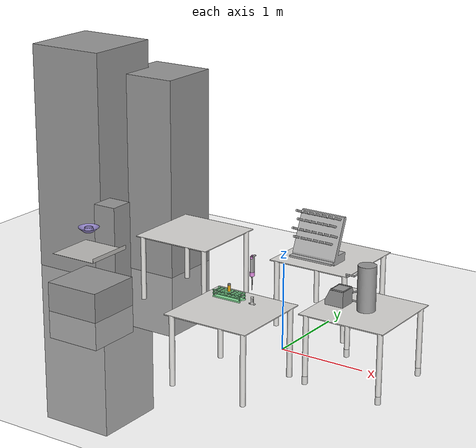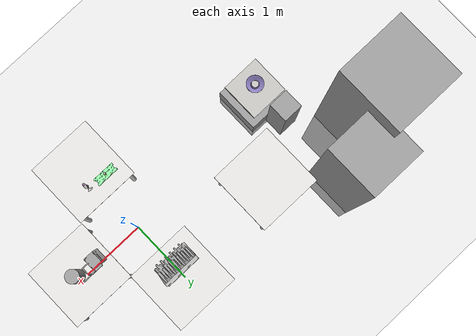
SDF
<sdf version="1.7">
 <world name="iiwa_hande">
  <plugin name="gz::sim::systems::Physics" filename="gz-sim-physics-system"/>
  <plugin name="gz::sim::systems::UserCommands" filename="gz-sim-user-commands-system"/>
  <plugin name="gz::sim::systems::SceneBroadcaster" filename="gz-sim-scene-broadcaster-system"/>
  <plugin name="gazebo_link_attacher" filename="libgazebo_link_attacher.so"/>
  <include><uri>model://sun</uri></include>
  <include><uri>model://ground_plane</uri></include>
  <include><uri>model://table_chem</uri><name>table_left</name><pose>0 1 0.8 0 0 1.57</pose></include>
  <include><uri>model://table_chem</uri><name>table_right</name><pose>0 -1 0.8 0 0 1.57</pose></include>
  <include><uri>model://table_chem</uri><name>table_middle</name><pose>1 0 0.7 0 0 0</pose></include>
  <include><uri>model://table_chem</uri><name>table_back</name><pose>-1.75 0.8 0.8 0 0 0</pose></include>
  <include><uri>model://dryer</uri><name>dryer</name><pose>-0.068 0.8 0.8 0 0 3.141589</pose></include>
  <include><uri>model://funnel</uri><name>funnel</name><pose>-2.52816 -0.228273 0.7 0 0 0</pose></include>
  <include><uri>model://sheet</uri><name>sheet</name><pose>-2.52946 -0.22767 0.7 0 0 0</pose></include>
  <include><uri>model://tip_holder</uri><name>tip_holder</name><pose>0.09 -0.75 0.8 0 0 0</pose></include>
  <include>
   <uri>model://tip_dispenser</uri>
   <name>tip_dispenser</name>
   <pose>0.090 -0.75 1.2 0 0 0</pose>
  </include>
  <include><uri>model://tube_tripod</uri><name>tube_tripod</name><pose>-0.2 -0.75 0.8 0 -0 0</pose></include>
  <include><uri>model://tube_main</uri><name>tube_main</name><pose>-0.2 -0.75 0.85 0 0 0</pose></include>
  <include><uri>model://tube_cover</uri><name>tube_cover</name><pose>-0.2 -0.75 0.95 0 0 0</pose></include>
  <include>
   <uri>model://table_vibro</uri>
   <name>table_vibro</name>
   <pose>-2.53046 -0.225356 0 0 -0 0</pose>
  </include>
  <include>
   <uri>model://water_dispenser</uri>
   <name>water_dispenser</name>
   <pose>0.72 0 0.7 0 0 3.14159</pose>
  </include>
  <include>
   <uri>model://podstavka_dlya_dozatorov</uri>
   <name>podstavka_dlya_dozatorov</name>
   <pose>-2.993546 0.956633 0.472458 0 0 0</pose>
  </include>
  <gravity>0 0 -9.8</gravity>
  <magnetic_field>6e-06 2.3e-05 -4.2e-05</magnetic_field>
  <atmosphere type="adiabatic"/>
  <physics type="ode">
   <max_step_size>0.001</max_step_size>
   <real_time_factor>1</real_time_factor>
   <real_time_update_rate>1000</real_time_update_rate>
  </physics>
  <scene><ambient>0.4 0.4 0.4 1</ambient><background>0.7 0.7 0.7 1</background><shadows>1</shadows></scene>
  <audio><device>default</device></audio>
  <spherical_coordinates>
   <surface_model>EARTH_WGS84</surface_model>
   <latitude_deg>0</latitude_deg>
   <longitude_deg>0</longitude_deg>
   <elevation>0</elevation>
   <heading_deg>0</heading_deg>
  </spherical_coordinates>
 </world>
</sdf>

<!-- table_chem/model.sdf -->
<sdf version='1.7'>
  <model name='table_chem'>
    <link name='body'>
      <self_collide>0</self_collide>
      <enable_wind>0</enable_wind>
      <kinematic>1</kinematic>
      <pose>0 0 0 0 -0 0</pose>
      <gravity>1</gravity>
      <inertial>
        <mass>3</mass>
        <pose>0 0 0 0 -0 0</pose>
        <inertia>
          <ixx>1</ixx>
          <ixy>0</ixy>
          <ixz>0</ixz>
          <iyy>1</iyy>
          <iyz>0</iyz>
          <izz>1</izz>
        </inertia>
      </inertial>
      <visual name='visual'>
        <geometry>
          <mesh>
            <uri>model://table_chem/meshes/table.stl</uri>
            <scale>1 1 1</scale>
          </mesh>
        </geometry>
        <material>
          <shader type='pixel'>
            <normal_map>__default__</normal_map>
          </shader>
          <script>
            <name>ModelPreview_92::link::visual_MATERIAL_</name>
            <uri>__default__</uri>
          </script>
          <ambient>0.871 0.867 0.855 1</ambient>
          <diffuse>0.871 0.867 0.855 1</diffuse>
          <specular>0 0 0 1</specular>
          <emissive>0 0 0 1</emissive>
        </material>
        <pose>0 0 0 0 -0 0</pose>
        <transparency>0</transparency>
        <cast_shadows>1</cast_shadows>
      </visual>
      <collision name='collision'>
        <laser_retro>0</laser_retro>
        <max_contacts>10</max_contacts>
        <pose>0 0 0 0 -0 0</pose>
        <geometry>
          <mesh>
            <uri>model://table_chem/meshes/table.stl</uri>
            <scale>1 1 1</scale>
          </mesh>
        </geometry>
        <surface>
          <friction>
            <ode>
              <mu>1</mu>
              <mu2>1</mu2>
              <fdir1>0 0 0</fdir1>
              <slip1>0</slip1>
              <slip2>0</slip2>
            </ode>
            <torsional>
              <coefficient>1</coefficient>
              <patch_radius>0</patch_radius>
              <surface_radius>0</surface_radius>
              <use_patch_radius>1</use_patch_radius>
              <ode>
                <slip>0</slip>
              </ode>
            </torsional>
          </friction>
          <bounce>
            <restitution_coefficient>0</restitution_coefficient>
            <threshold>1e+06</threshold>
          </bounce>
          <contact>
            <collide_without_contact>0</collide_without_contact>
            <collide_without_contact_bitmask>1</collide_without_contact_bitmask>
            <collide_bitmask>1</collide_bitmask>
            <ode>
              <soft_cfm>0</soft_cfm>
              <soft_erp>0.2</soft_erp>
              <kp>1e+13</kp>
              <kd>1</kd>
              <max_vel>0.01</max_vel>
              <min_depth>0</min_depth>
            </ode>
            <bullet>
              <split_impulse>1</split_impulse>
              <split_impulse_penetration_threshold>-0.01</split_impulse_penetration_threshold>
              <soft_cfm>0</soft_cfm>
              <soft_erp>0.2</soft_erp>
              <kp>1e+13</kp>
              <kd>1</kd>
            </bullet>
          </contact>
        </surface>
      </collision>
    </link>
    <static>0</static>
    <allow_auto_disable>1</allow_auto_disable>
  </model>
</sdf>

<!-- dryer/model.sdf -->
<sdf version='1.7'>
  <model name='dryer'>
    <link name='link'>
      <self_collide>0</self_collide>
      <enable_wind>0</enable_wind>
      <kinematic>1</kinematic>
      <pose>0 0 0 0 -0 0</pose>
      <gravity>1</gravity>
      <inertial>
        <mass>3</mass>
        <pose>0 0 0 0 -0 0</pose>
        <inertia>
          <ixx>1</ixx>
          <ixy>0</ixy>
          <ixz>0</ixz>
          <iyy>1</iyy>
          <iyz>0</iyz>
          <izz>1</izz>
        </inertia>
      </inertial>
      <visual name='visual'>
        <geometry>
          <mesh>
            <uri>model://dryer/meshes/dryer.stl</uri>
            <scale>1 1 1</scale>
          </mesh>
        </geometry>
        <material>
          <shader type='pixel'>
            <normal_map>__default__</normal_map>
          </shader>
          <script>
            <name>ModelPreview_92::link::visual_MATERIAL_</name>
            <uri>__default__</uri>
          </script>
            <ambient>0.965 0.961 0.957 1</ambient>
            <diffuse>0.7 0.7 0.7 1</diffuse>
          <specular>0 0 0 1</specular>
          <emissive>0 0 0 1</emissive>
        </material>
        <pose>0 0 0 0 -0 0</pose>
        <transparency>0</transparency>
        <cast_shadows>1</cast_shadows>
      </visual>
      <collision name='collision'>
        <laser_retro>0</laser_retro>
        <max_contacts>10</max_contacts>
        <pose>0 0 0 0 -0 0</pose>
        <geometry>
          <mesh>
            <uri>/home/stepan/Документы/GitHub/ros2_chemical_competition/worlds/models/dryer/meshes/dryer.stl</uri>
            <scale>1 1 1</scale>
          </mesh>
        </geometry>
        <surface>
          <friction>
            <ode>
              <mu>1</mu>
              <mu2>1</mu2>
              <fdir1>0 0 0</fdir1>
              <slip1>0</slip1>
              <slip2>0</slip2>
            </ode>
            <torsional>
              <coefficient>1</coefficient>
              <patch_radius>0</patch_radius>
              <surface_radius>0</surface_radius>
              <use_patch_radius>1</use_patch_radius>
              <ode>
                <slip>0</slip>
              </ode>
            </torsional>
          </friction>
          <bounce>
            <restitution_coefficient>0</restitution_coefficient>
            <threshold>1e+06</threshold>
          </bounce>
          <contact>
            <collide_without_contact>0</collide_without_contact>
            <collide_without_contact_bitmask>1</collide_without_contact_bitmask>
            <collide_bitmask>1</collide_bitmask>
            <ode>
              <soft_cfm>0</soft_cfm>
              <soft_erp>0.2</soft_erp>
              <kp>1e+13</kp>
              <kd>1</kd>
              <max_vel>0.01</max_vel>
              <min_depth>0</min_depth>
            </ode>
            <bullet>
              <split_impulse>1</split_impulse>
              <split_impulse_penetration_threshold>-0.01</split_impulse_penetration_threshold>
              <soft_cfm>0</soft_cfm>
              <soft_erp>0.2</soft_erp>
              <kp>1e+13</kp>
              <kd>1</kd>
            </bullet>
          </contact>
        </surface>
      </collision>
    </link>
    <static>0</static>
    <allow_auto_disable>1</allow_auto_disable>
  </model>
</sdf>

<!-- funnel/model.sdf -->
<sdf version='1.7'>
  <model name='funnel'>
    <link name='link'>
      <self_collide>0</self_collide>
      <enable_wind>0</enable_wind>
      <kinematic>0</kinematic>
      <pose>0 0 0 0 -0 0</pose>
      <gravity>1</gravity>
      <inertial>
        <mass>1</mass>
        <pose>0 0 0 0 -0 0</pose>
        <inertia>
          <ixx>1</ixx>
          <ixy>0</ixy>
          <ixz>0</ixz>
          <iyy>1</iyy>
          <iyz>0</iyz>
          <izz>1</izz>
        </inertia>
      </inertial>
      <visual name='visual'>
        <geometry>
          <mesh>
            <uri>model://funnel/meshes/funnel.stl</uri>
            <scale>1 1 1</scale>
          </mesh>
        </geometry>
        <material>
          <shader type='pixel'>
            <normal_map>__default__</normal_map>
          </shader>
          <script>
            <name>ModelPreview_83::link::visual_MATERIAL_</name>
            <uri>__default__</uri>
          </script>
          <ambient>0.8 0.8 0.9 1</ambient>
          <diffuse>0.55 0.5 0.75 1</diffuse>
          <specular>0 0 0 1</specular>
          <emissive>0 0 0 1</emissive>
        </material>
        <pose>0 0 0 0 -0 0</pose>
        <transparency>0</transparency>
        <cast_shadows>1</cast_shadows>
      </visual>
      <collision name='collision'>
        <laser_retro>0</laser_retro>
        <max_contacts>10</max_contacts>
        <pose>0 0 0 0 -0 0</pose>
        <geometry>
          <mesh>
            <uri>model://funnel/meshes/funnel.stl</uri>
            <scale>1 1 1</scale>
          </mesh>
        </geometry>
        <surface>
          <friction>
            <ode>
              <mu>1</mu>
              <mu2>1</mu2>
              <fdir1>0 0 0</fdir1>
              <slip1>0</slip1>
              <slip2>0</slip2>
            </ode>
            <torsional>
              <coefficient>1</coefficient>
              <patch_radius>0</patch_radius>
              <surface_radius>0</surface_radius>
              <use_patch_radius>1</use_patch_radius>
              <ode>
                <slip>0</slip>
              </ode>
            </torsional>
          </friction>
          <bounce>
            <restitution_coefficient>0</restitution_coefficient>
            <threshold>1e+06</threshold>
          </bounce>
          <contact>
            <collide_without_contact>0</collide_without_contact>
            <collide_without_contact_bitmask>1</collide_without_contact_bitmask>
            <collide_bitmask>1</collide_bitmask>
            <ode>
              <soft_cfm>0</soft_cfm>
              <soft_erp>0.2</soft_erp>
              <kp>1e+13</kp>
              <kd>1</kd>
              <max_vel>0.01</max_vel>
              <min_depth>0</min_depth>
            </ode>
            <bullet>
              <split_impulse>1</split_impulse>
              <split_impulse_penetration_threshold>-0.01</split_impulse_penetration_threshold>
              <soft_cfm>0</soft_cfm>
              <soft_erp>0.2</soft_erp>
              <kp>1e+13</kp>
              <kd>1</kd>
            </bullet>
          </contact>
        </surface>
      </collision>
    </link>
    <static>0</static>
    <allow_auto_disable>1</allow_auto_disable>
  </model>
</sdf>

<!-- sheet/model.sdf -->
<sdf version='1.7'>
  <model name='sheet'>
    <link name='body'>
      <self_collide>0</self_collide>
      <enable_wind>0</enable_wind>
      <kinematic>0</kinematic>
      <pose>0 0 0 0 -0 0</pose>
      <gravity>1</gravity>
      <inertial>
        <mass>3</mass>
        <pose>0 0 0 0 -0 0</pose>
        <inertia>
          <ixx>1</ixx>
          <ixy>0</ixy>
          <ixz>0</ixz>
          <iyy>1</iyy>
          <iyz>0</iyz>
          <izz>1</izz>
        </inertia>
      </inertial>
      <visual name='visual'>
        <geometry>
          <mesh>
            <uri>model://sheet/meshes/sheet.stl</uri>
            <scale>1 1 1</scale>
          </mesh>
        </geometry>
        <material>
          <shader type='pixel'>
            <normal_map>__default__</normal_map>
          </shader>
          <script>
            <name>ModelPreview_92::link::visual_MATERIAL_</name>
            <uri>__default__</uri>
          </script>
          <ambient>0.753 0.749 0.737 1</ambient>
          <diffuse>0.753 0.749 0.737 1</diffuse>
          <specular>0 0 0 1</specular>
          <emissive>0 0 0 1</emissive>
        </material>
        <pose>0 0 0 0 -0 0</pose>
        <transparency>0</transparency>
        <cast_shadows>1</cast_shadows>
      </visual>
      <collision name='collision'>
        <laser_retro>0</laser_retro>
        <max_contacts>10</max_contacts>
        <pose>0 0 0 0 -0 0</pose>
        <geometry>
          <mesh>
            <uri>model://sheet/meshes/sheet.stl</uri>
            <scale>1 1 1</scale>
          </mesh>
        </geometry>
        <surface>
          <friction>
            <ode>
              <mu>1</mu>
              <mu2>1</mu2>
              <fdir1>0 0 0</fdir1>
              <slip1>0</slip1>
              <slip2>0</slip2>
            </ode>
            <torsional>
              <coefficient>1</coefficient>
              <patch_radius>0</patch_radius>
              <surface_radius>0</surface_radius>
              <use_patch_radius>1</use_patch_radius>
              <ode>
                <slip>0</slip>
              </ode>
            </torsional>
          </friction>
          <bounce>
            <restitution_coefficient>0</restitution_coefficient>
            <threshold>1e+06</threshold>
          </bounce>
          <contact>
            <collide_without_contact>0</collide_without_contact>
            <collide_without_contact_bitmask>1</collide_without_contact_bitmask>
            <collide_bitmask>1</collide_bitmask>
            <ode>
              <soft_cfm>0</soft_cfm>
              <soft_erp>0.2</soft_erp>
              <kp>1e+13</kp>
              <kd>1</kd>
              <max_vel>0.01</max_vel>
              <min_depth>0</min_depth>
            </ode>
            <bullet>
              <split_impulse>1</split_impulse>
              <split_impulse_penetration_threshold>-0.01</split_impulse_penetration_threshold>
              <soft_cfm>0</soft_cfm>
              <soft_erp>0.2</soft_erp>
              <kp>1e+13</kp>
              <kd>1</kd>
            </bullet>
          </contact>
        </surface>
      </collision>
    </link>
    <static>0</static>
    <allow_auto_disable>1</allow_auto_disable>
  </model>
</sdf>

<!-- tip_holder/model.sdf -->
<sdf version='1.7'>
  <model name='tip_holder'>
    <link name='body'>
      <self_collide>0</self_collide>
      <enable_wind>0</enable_wind>
      <kinematic>1</kinematic>
      <pose>0 0 0 0 -0 0</pose>
      <gravity>1</gravity>
      <inertial>
        <mass>3</mass>
        <pose>0 0 0 0 -0 0</pose>
        <inertia>
          <ixx>1</ixx>
          <ixy>0</ixy>
          <ixz>0</ixz>
          <iyy>1</iyy>
          <iyz>0</iyz>
          <izz>1</izz>
        </inertia>
      </inertial>
      <visual name='visual'>
        <geometry>
          <mesh>
            <uri>model://tip_holder/meshes/tip_holder.stl</uri>
            <scale>1 1 1</scale>
          </mesh>
        </geometry>
        <material>
          <shader type='pixel'>
            <normal_map>__default__</normal_map>
          </shader>
          <script>
            <name>ModelPreview_92::link::visual_MATERIAL_</name>
            <uri>__default__</uri>
          </script>
          <ambient>0.871 0.867 0.855 1</ambient>
          <diffuse>0.871 0.867 0.855 1</diffuse>
          <specular>0 0 0 1</specular>
          <emissive>0 0 0 1</emissive>
        </material>
        <pose>0 0 0 0 -0 0</pose>
        <transparency>0</transparency>
        <cast_shadows>1</cast_shadows>
      </visual>
      <collision name='collision'>
        <laser_retro>0</laser_retro>
        <max_contacts>10</max_contacts>
        <pose>0 0 0 0 -0 0</pose>
        <geometry>
          <mesh>
            <uri>model://tip_holder/meshes/tip_holder.stl</uri>
            <scale>1 1 1</scale>
          </mesh>
        </geometry>
        <surface>
          <friction>
            <ode>
              <mu>1</mu>
              <mu2>1</mu2>
              <fdir1>0 0 0</fdir1>
              <slip1>0</slip1>
              <slip2>0</slip2>
            </ode>
            <torsional>
              <coefficient>1</coefficient>
              <patch_radius>0</patch_radius>
              <surface_radius>0</surface_radius>
              <use_patch_radius>1</use_patch_radius>
              <ode>
                <slip>0</slip>
              </ode>
            </torsional>
          </friction>
          <bounce>
            <restitution_coefficient>0</restitution_coefficient>
            <threshold>1e+06</threshold>
          </bounce>
          <contact>
            <collide_without_contact>0</collide_without_contact>
            <collide_without_contact_bitmask>1</collide_without_contact_bitmask>
            <collide_bitmask>1</collide_bitmask>
            <ode>
              <soft_cfm>0</soft_cfm>
              <soft_erp>0.2</soft_erp>
              <kp>1e+13</kp>
              <kd>1</kd>
              <max_vel>0.01</max_vel>
              <min_depth>0</min_depth>
            </ode>
            <bullet>
              <split_impulse>1</split_impulse>
              <split_impulse_penetration_threshold>-0.01</split_impulse_penetration_threshold>
              <soft_cfm>0</soft_cfm>
              <soft_erp>0.2</soft_erp>
              <kp>1e+13</kp>
              <kd>1</kd>
            </bullet>
          </contact>
        </surface>
      </collision>
    </link>
    <static>0</static>
    <allow_auto_disable>1</allow_auto_disable>
  </model>
</sdf>

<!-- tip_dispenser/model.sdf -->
<sdf version='1.7'>
    <model name='tip_dispenser'>
      <link name='pusher'>
        <inertial>
          <mass>0.05</mass>
          <inertia>
            <ixx>0.166667</ixx>
            <ixy>0</ixy>
            <ixz>0</ixz>
            <iyy>0.166667</iyy>
            <iyz>0</iyz>
            <izz>0.166667</izz>
          </inertia>
          <pose>0 0 0 0 -0 0</pose>
        </inertial>
        <pose>0.00347 0.001633 0.023543 0 -0 0</pose>
        <self_collide>0</self_collide>
        <enable_wind>0</enable_wind>
        <kinematic>0</kinematic>
        <visual name='visual'>
          <pose>0 0 0 0 -0 0</pose>
          <geometry>
            <mesh>
              <uri>model://tip_dispenser/meshes/tip_remover.stl</uri>
              <scale>1 1 1</scale>
            </mesh>
          </geometry>
          <material>
            <lighting>1</lighting>
            <script>
              <uri>file://media/materials/scripts/gazebo.material</uri>
              <name>Gazebo/Grey</name>
            </script>
            <ambient>0.863 0.541 0.867 1</ambient>
            <diffuse>0.863 0.541 0.867 1</diffuse>
            <specular>0 0 0 1</specular>
            <emissive>0 0 0 1</emissive>
          </material>
          <pose>0 0 0 0 -0 0</pose>
          <transparency>0</transparency>
          <cast_shadows>1</cast_shadows>
        </visual>
        <collision name='collision'>
          <laser_retro>0</laser_retro>
          <max_contacts>0</max_contacts>
          <pose>0 0 0 0 -0 0</pose>
          <geometry>
            <mesh>
              <uri>model://tip_dispenser/meshes/tip_remover.stl</uri>
              <scale>1 1 1</scale>
            </mesh>
          </geometry>
          <surface>
            <friction>
              <ode>
                <mu>1</mu>
                <mu2>1</mu2>
                <fdir1>0 0 0</fdir1>
                <slip1>0</slip1>
                <slip2>0</slip2>
              </ode>
              <torsional>
                <coefficient>1</coefficient>
                <patch_radius>0</patch_radius>
                <surface_radius>0</surface_radius>
                <use_patch_radius>1</use_patch_radius>
                <ode>
                  <slip>0</slip>
                </ode>
              </torsional>
            </friction>
            <bounce>
              <restitution_coefficient>0</restitution_coefficient>
              <threshold>1e+06</threshold>
            </bounce>
            <contact>
              <collide_without_contact>0</collide_without_contact>
              <collide_without_contact_bitmask>1</collide_without_contact_bitmask>
              <collide_bitmask>1</collide_bitmask>
              <ode>
                <soft_cfm>0</soft_cfm>
                <soft_erp>0.2</soft_erp>
                <kp>1e+13</kp>
                <kd>1</kd>
                <max_vel>0.01</max_vel>
                <min_depth>0</min_depth>
              </ode>
              <bullet>
                <split_impulse>1</split_impulse>
                <split_impulse_penetration_threshold>-0.01</split_impulse_penetration_threshold>
                <soft_cfm>0</soft_cfm>
                <soft_erp>0.2</soft_erp>
                <kp>1e+13</kp>
                <kd>1</kd>
              </bullet>
            </contact>
          </surface>
        </collision>
      </link>
      <link name='body'>
        <inertial>
          <mass>0.1</mass>
          <inertia>
            <ixx>0.166667</ixx>
            <ixy>0</ixy>
            <ixz>0</ixz>
            <iyy>0.166667</iyy>
            <iyz>0</iyz>
            <izz>0.166667</izz>
          </inertia>
          <pose>0 0 0 0 -0 0</pose>
        </inertial>
        <pose>-0.000906 -0.000185 0.011704 0 -0 0</pose>
        <gravity>0</gravity>
        <self_collide>0</self_collide>
        <kinematic>0</kinematic>
        <enable_wind>0</enable_wind>
        <visual name='visual'>
          <pose>0 0 0 0 -0 0</pose>
          <geometry>
            <mesh>
              <uri>model://tip_dispenser/meshes/body.stl</uri>
              <scale>1 1 1</scale>
            </mesh>
          </geometry>
          <material>
            <lighting>1</lighting>
            <script>
              <uri>file://media/materials/scripts/gazebo.material</uri>
              <name>Gazebo/Grey</name>
            </script>
            <shader type='pixel'>
              <normal_map>__default__</normal_map>
            </shader>
            <ambient>0.965 0.961 0.957 1</ambient>
            <diffuse>0.7 0.7 0.7 1</diffuse>
            <specular>0.01 0.01 0.01 1</specular>
            <emissive>0 0 0 1</emissive>
          </material>
          <transparency>0</transparency>
          <cast_shadows>1</cast_shadows>
        </visual>
        <collision name='collision'>
          <laser_retro>0</laser_retro>
          <max_contacts>0</max_contacts>
          <pose>0 0 0 0 -0 0</pose>
          <geometry>
            <mesh>
              <uri>model://tip_dispenser/meshes/body.stl</uri>
              <scale>1 1 1</scale>
            </mesh>
          </geometry>
          <surface>
            <friction>
              <ode>
                <mu>1</mu>
                <mu2>1</mu2>
                <fdir1>0 0 0</fdir1>
                <slip1>0</slip1>
                <slip2>0</slip2>
              </ode>
              <torsional>
                <coefficient>1</coefficient>
                <patch_radius>0</patch_radius>
                <surface_radius>0</surface_radius>
                <use_patch_radius>1</use_patch_radius>
                <ode>
                  <slip>0</slip>
                </ode>
              </torsional>
            </friction>
            <bounce>
              <restitution_coefficient>0</restitution_coefficient>
              <threshold>1e+06</threshold>
            </bounce>
            <contact>
              <collide_without_contact>0</collide_without_contact>
              <collide_without_contact_bitmask>1</collide_without_contact_bitmask>
              <collide_bitmask>1</collide_bitmask>
              <ode>
                <soft_cfm>0</soft_cfm>
                <soft_erp>0.2</soft_erp>
                <kp>1e+13</kp>
                <kd>1</kd>
                <max_vel>0.01</max_vel>
                <min_depth>0</min_depth>
              </ode>
              <bullet>
                <split_impulse>1</split_impulse>
                <split_impulse_penetration_threshold>-0.01</split_impulse_penetration_threshold>
                <soft_cfm>0</soft_cfm>
                <soft_erp>0.2</soft_erp>
                <kp>1e+13</kp>
                <kd>1</kd>
              </bullet>
            </contact>
          </surface>
        </collision>
      </link>
      <link name='button'>
        <inertial>
          <mass>0.01</mass>
          <inertia>
            <ixx>0.166667</ixx>
            <ixy>0</ixy>
            <ixz>0</ixz>
            <iyy>0.166667</iyy>
            <iyz>0</iyz>
            <izz>0.166667</izz>
          </inertia>
          <pose>0 0 0 0 -0 0</pose>
        </inertial>
        <pose>-0.000892 -0.000516 0.108964 0 0 -2.90884</pose>
        <self_collide>0</self_collide>
        <enable_wind>0</enable_wind>
        <kinematic>0</kinematic>
        <visual name='visual'>
          <pose>0 0 0 0 -0 0</pose>
          <geometry>
            <mesh>
              <uri>model://tip_dispenser/meshes/button.stl</uri>
              <scale>1 1 1</scale>
            </mesh>
          </geometry>
          <material>
            <lighting>1</lighting>
            <script>
              <uri>file://media/materials/scripts/gazebo.material</uri>
              <name>Gazebo/Grey</name>
            </script>
            <ambient>0.863 0.541 0.867 1</ambient>
            <diffuse>0.863 0.541 0.867 1</diffuse>
            <specular>0 0 0 1</specular>
            <emissive>0 0 0 1</emissive>
          </material>
          <transparency>0</transparency>
          <cast_shadows>1</cast_shadows>
        </visual>
        <collision name='collision'>
          <laser_retro>0</laser_retro>
          <max_contacts>0</max_contacts>
          <pose>0 0 0 0 -0 0</pose>
          <geometry>
            <mesh>
              <uri>model://tip_dispenser/meshes/button.stl</uri>
              <scale>1 1 1</scale>
            </mesh>
          </geometry>
          <surface>
            <friction>
              <ode>
                <mu>1</mu>
                <mu2>1</mu2>
                <fdir1>0 0 0</fdir1>
                <slip1>0</slip1>
                <slip2>0</slip2>
              </ode>
              <torsional>
                <coefficient>1</coefficient>
                <patch_radius>0</patch_radius>
                <surface_radius>0</surface_radius>
                <use_patch_radius>1</use_patch_radius>
                <ode>
                  <slip>0</slip>
                </ode>
              </torsional>
            </friction>
            <bounce>
              <restitution_coefficient>0</restitution_coefficient>
              <threshold>1e+06</threshold>
            </bounce>
            <contact>
              <collide_without_contact>0</collide_without_contact>
              <collide_without_contact_bitmask>1</collide_without_contact_bitmask>
              <collide_bitmask>1</collide_bitmask>
              <ode>
                <soft_cfm>0</soft_cfm>
                <soft_erp>0.2</soft_erp>
                <kp>1e+13</kp>
                <kd>1</kd>
                <max_vel>0.01</max_vel>
                <min_depth>0</min_depth>
              </ode>
              <bullet>
                <split_impulse>1</split_impulse>
                <split_impulse_penetration_threshold>-0.01</split_impulse_penetration_threshold>
                <soft_cfm>0</soft_cfm>
                <soft_erp>0.2</soft_erp>
                <kp>1e+13</kp>
                <kd>1</kd>
              </bullet>
            </contact>
          </surface>
        </collision>
      </link>
      <link name='tip'>
        <inertial>
          <mass>0.01</mass>
          <inertia>
            <ixx>0.166667</ixx>
            <ixy>0</ixy>
            <ixz>0</ixz>
            <iyy>0.166667</iyy>
            <iyz>0</iyz>
            <izz>0.166667</izz>
          </inertia>
          <pose>0 0 0 0 -0 0</pose>
        </inertial>
        <pose>-0.001671 -0.000933 -0.144211 0 -0 0</pose>
        <gravity>0</gravity>
        <self_collide>0</self_collide>
        <kinematic>0</kinematic>
        <enable_wind>0</enable_wind>
        <visual name='visual'>
          <pose>0 0 0 0 -0 0</pose>
          <geometry>
            <mesh>
              <uri>model://tip_dispenser/meshes/tip.stl</uri>
              <scale>1 1 1</scale>
            </mesh>
          </geometry>
          <material>
            <lighting>1</lighting>
            <script>
              <uri>file://media/materials/scripts/gazebo.material</uri>
              <name>Gazebo/Grey</name>
            </script>
            <shader type='pixel'>
              <normal_map>__default__</normal_map>
            </shader>
            <ambient>0.3 0.3 0.3 1</ambient>
            <diffuse>0.7 0.7 0.7 1</diffuse>
            <specular>0.01 0.01 0.01 1</specular>
            <emissive>0 0 0 1</emissive>
          </material>
          <transparency>0</transparency>
          <cast_shadows>1</cast_shadows>
        </visual>
        <collision name='collision'>
          <laser_retro>0</laser_retro>
          <max_contacts>0</max_contacts>
          <pose>0 0 0 0 -0 0</pose>
          <geometry>
            <mesh>
              <uri>model://tip_dispenser/meshes/tip.stl</uri>
              <scale>1 1 1</scale>
            </mesh>
          </geometry>
          <surface>
            <friction>
              <ode>
                <mu>1</mu>
                <mu2>1</mu2>
                <fdir1>0 0 0</fdir1>
                <slip1>0</slip1>
                <slip2>0</slip2>
              </ode>
              <torsional>
                <coefficient>1</coefficient>
                <patch_radius>0</patch_radius>
                <surface_radius>0</surface_radius>
                <use_patch_radius>1</use_patch_radius>
                <ode>
                  <slip>0</slip>
                </ode>
              </torsional>
            </friction>
            <bounce>
              <restitution_coefficient>0</restitution_coefficient>
              <threshold>1e+06</threshold>
            </bounce>
            <contact>
              <collide_without_contact>0</collide_without_contact>
              <collide_without_contact_bitmask>1</collide_without_contact_bitmask>
              <collide_bitmask>1</collide_bitmask>
              <ode>
                <soft_cfm>0</soft_cfm>
                <soft_erp>0.2</soft_erp>
                <kp>1e+13</kp>
                <kd>1</kd>
                <max_vel>0.01</max_vel>
                <min_depth>0</min_depth>
              </ode>
              <bullet>
                <split_impulse>1</split_impulse>
                <split_impulse_penetration_threshold>-0.01</split_impulse_penetration_threshold>
                <soft_cfm>0</soft_cfm>
                <soft_erp>0.2</soft_erp>
                <kp>1e+13</kp>
                <kd>1</kd>
              </bullet>
            </contact>
          </surface>
        </collision>
      </link>
      <joint name='body_button' type='prismatic'>
        <parent>body</parent>
        <child>button</child>
        <pose>0 0 0 0 -0 0</pose>
        <axis>
          <xyz>0 0 1</xyz>
          <limit>
            <lower>-0.0023</lower>
            <upper>0</upper>
            <effort>-1</effort>
            <velocity>-1</velocity>
          </limit>
          <dynamics>
            <spring_reference>0</spring_reference>
            <spring_stiffness>0</spring_stiffness>
            <damping>0</damping>
            <friction>0</friction>
          </dynamics>
        </axis>
        <physics>
          <ode>
            <limit>
              <cfm>0</cfm>
              <erp>0.2</erp>
            </limit>
            <suspension>
              <cfm>0</cfm>
              <erp>0.2</erp>
            </suspension>
          </ode>
        </physics>
      </joint>
      <joint name='body_pusher' type='prismatic'>
        <parent>body</parent>
        <child>pusher</child>
        <pose>0 0 0 0 -0 0</pose>
        <axis>
          <xyz>0 0 1</xyz>
          <limit>
            <lower>-0.018</lower>
            <upper>0</upper>
            <effort>-1</effort>
            <velocity>-1</velocity>
          </limit>
          <dynamics>
            <spring_reference>0</spring_reference>
            <spring_stiffness>0</spring_stiffness>
            <damping>0</damping>
            <friction>0</friction>
          </dynamics>
        </axis>
        <physics>
          <ode>
            <limit>
              <cfm>0</cfm>
              <erp>0.2</erp>
            </limit>
            <suspension>
              <cfm>0</cfm>
              <erp>0.2</erp>
            </suspension>
          </ode>
        </physics>
      </joint>
      <plugin name="detach_plugin" filename="libDetachPlugin.so"/>
      <joint name='body_tip' type='prismatic'>
        <parent>body</parent>
        <child>tip</child>
        <pose>0 0 0 0 -0 0</pose>
        <axis>
          <xyz>1 0 1</xyz>
          <limit>
            <lower>-0</lower>
            <upper>0</upper>
            <effort>-1</effort>
            <velocity>-1</velocity>
          </limit>
          <dynamics>
            <spring_reference>0</spring_reference>
            <spring_stiffness>0</spring_stiffness>
            <damping>0</damping>
            <friction>0</friction>
          </dynamics>
        </axis>
        <physics>
          <ode>
            <limit>
              <cfm>0</cfm>
              <erp>0.2</erp>
            </limit>
            <suspension>
              <cfm>0</cfm>
              <erp>0.2</erp>
            </suspension>
          </ode>
        </physics>
      </joint>
      <static>0</static>
      <allow_auto_disable>1</allow_auto_disable>
      <pose>-0.000618 0.006409 0.264956 0 -0 0</pose>
    </model>
</sdf>

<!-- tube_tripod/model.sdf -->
<sdf version='1.7'>
  <model name='tube_tripod'>
    <link name='link'>
      <self_collide>0</self_collide>
      <enable_wind>0</enable_wind>
      <kinematic>1</kinematic>
      <pose>0 0 0 0 -0 0</pose>
      <gravity>1</gravity>
      <inertial>
        <mass>0.5</mass>
        <pose>0 0 0 0 -0 0</pose>
        <inertia>
          <ixx>0</ixx>
          <ixy>0</ixy>
          <ixz>0</ixz>
          <iyy>0</iyy>
          <iyz>0</iyz>
          <izz>0</izz>
        </inertia>
      </inertial>
      <visual name='visual'>
        <geometry>
          <mesh>
            <uri>model://tube_tripod/meshes/tube_tripod.stl</uri>
            <scale>1 1 1</scale>
          </mesh>
        </geometry>
        <material>
          <shader type='pixel'>
            <normal_map>__default__</normal_map>
          </shader>
          <script>
            <name>ModelPreview_3::link::visual_MATERIAL_</name>
            <uri>__default__</uri>
          </script>
          <ambient>0.561 0.941 0.643 1</ambient>
          <diffuse>0.561 0.941 0.643 1</diffuse>
          <specular>0.01 0.01 0.01 1</specular>
          <emissive>0.01 0.01 0.01 1</emissive>
          <lighting>1</lighting>
        </material>
        <pose>0 0 0 0 -0 0</pose>
        <transparency>0</transparency>
        <cast_shadows>1</cast_shadows>
      </visual>
      <collision name='collision'>
        <laser_retro>0</laser_retro>
        <max_contacts>10</max_contacts>
        <pose>0 0 0 0 -0 0</pose>
        <geometry>
          <mesh>
            <uri>model://tube_tripod/meshes/tube_tripod.stl</uri>
            <scale>1 1 1</scale>
          </mesh>
        </geometry>
        <surface>
          <friction>
            <ode>
              <mu>1</mu>
              <mu2>1</mu2>
              <fdir1>0 0 0</fdir1>
              <slip1>0</slip1>
              <slip2>0</slip2>
            </ode>
            <torsional>
              <coefficient>1</coefficient>
              <patch_radius>0</patch_radius>
              <surface_radius>0</surface_radius>
              <use_patch_radius>1</use_patch_radius>
              <ode>
                <slip>0</slip>
              </ode>
            </torsional>
          </friction>
          <bounce>
            <restitution_coefficient>0</restitution_coefficient>
            <threshold>1e+06</threshold>
          </bounce>
          <contact>
            <collide_without_contact>0</collide_without_contact>
            <collide_without_contact_bitmask>1</collide_without_contact_bitmask>
            <collide_bitmask>1</collide_bitmask>
            <ode>
              <soft_cfm>0</soft_cfm>
              <soft_erp>0.2</soft_erp>
              <kp>1e+13</kp>
              <kd>1</kd>
              <max_vel>0.01</max_vel>
              <min_depth>0</min_depth>
            </ode>
            <bullet>
              <split_impulse>1</split_impulse>
              <split_impulse_penetration_threshold>-0.01</split_impulse_penetration_threshold>
              <soft_cfm>0</soft_cfm>
              <soft_erp>0.2</soft_erp>
              <kp>1e+13</kp>
              <kd>1</kd>
            </bullet>
          </contact>
        </surface>
      </collision>
    </link>
    <static>0</static>
    <allow_auto_disable>1</allow_auto_disable>
  </model>
</sdf>

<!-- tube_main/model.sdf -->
<sdf version='1.7'>
  <model name='tube'>
    <link name='body'>
      <self_collide>0</self_collide>
      <enable_wind>0</enable_wind>
      <kinematic>0</kinematic>
      <pose>0 0 0 0 0 0</pose>
      <gravity>1</gravity>
      <inertial>
        <mass>0.01</mass>
        <pose>0 0 0 0 -0 0</pose>
        <inertia>
          <ixx>1</ixx>
          <ixy>0</ixy>
          <ixz>0</ixz>
          <iyy>1</iyy>
          <iyz>0</iyz>
          <izz>1</izz>
        </inertia>
      </inertial>
      <visual name='visual'>
        <geometry>
          <mesh>
            <uri>model://tube_main/meshes/tube_main.stl</uri>
            <scale>1 1 1</scale>
          </mesh>
        </geometry>
        <material>
          <shader type='pixel'>
            <normal_map>__default__</normal_map>
          </shader>
          <script>
            <name>ModelPreview_92::link::visual_MATERIAL_</name>
            <uri>__default__</uri>
          </script>
          <ambient>0.898 0.647 0.039 1</ambient>
          <diffuse>0.898 0.647 0.039 1</diffuse>
          <specular>0 0 0 1</specular>
          <emissive>0 0 0 1</emissive>
        </material>
        <pose>0 0 0 0 0 0</pose>
        <transparency>0</transparency>
        <cast_shadows>1</cast_shadows>
      </visual>
      <collision name='collision'>
        <laser_retro>0</laser_retro>
        <max_contacts>10</max_contacts>
        <pose>0 0 0 0 0 0</pose>
        <geometry>
          <mesh>
            <uri>model://tube_main/meshes/tube_main.stl</uri>
            <scale>1 1 1</scale>
          </mesh>
        </geometry>
        <surface>
          <friction>
            <ode>
              <mu>1</mu>
              <mu2>1</mu2>
              <fdir1>0 0 0</fdir1>
              <slip1>0</slip1>
              <slip2>0</slip2>
            </ode>
            <torsional>
              <coefficient>1</coefficient>
              <patch_radius>0</patch_radius>
              <surface_radius>0</surface_radius>
              <use_patch_radius>1</use_patch_radius>
              <ode>
                <slip>0</slip>
              </ode>
            </torsional>
          </friction>
          <bounce>
            <restitution_coefficient>0</restitution_coefficient>
            <threshold>1e+06</threshold>
          </bounce>
          <contact>
            <collide_without_contact>0</collide_without_contact>
            <collide_without_contact_bitmask>1</collide_without_contact_bitmask>
            <collide_bitmask>1</collide_bitmask>
            <ode>
              <soft_cfm>0</soft_cfm>
              <soft_erp>0.2</soft_erp>
              <kp>1e+13</kp>
              <kd>1</kd>
              <max_vel>0.01</max_vel>
              <min_depth>0</min_depth>
            </ode>
            <bullet>
              <split_impulse>1</split_impulse>
              <split_impulse_penetration_threshold>-0.01</split_impulse_penetration_threshold>
              <soft_cfm>0</soft_cfm>
              <soft_erp>0.2</soft_erp>
              <kp>1e+13</kp>
              <kd>1</kd>
            </bullet>
          </contact>
        </surface>
      </collision>
    </link>
    <static>0</static>
    <allow_auto_disable>1</allow_auto_disable>
  </model>
</sdf>

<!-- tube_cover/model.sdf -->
<sdf version='1.7'>
  <model name='tube'>
    <link name='cover'>
      <inertial>
        <mass>0.01</mass>
        <inertia>
          <ixx>0.166667</ixx>
          <ixy>0</ixy>
          <ixz>0</ixz>
          <iyy>0.166667</iyy>
          <iyz>0</iyz>
          <izz>0.166667</izz>
        </inertia>
        <pose>0 0 0 0 -0 0</pose>
      </inertial>
      <pose>0 0 0 0 0 0</pose>
      <self_collide>0</self_collide>
      <enable_wind>0</enable_wind>
      <kinematic>0</kinematic>
      <gravity>1</gravity>
      <visual name='visual'>
        <pose>0 0 0 0 -0 0</pose>
        <geometry>
          <mesh>
            <uri>model://tube_cover/meshes/tube_cover.stl</uri>
            <scale>1 1 1</scale>
          </mesh>
        </geometry>
        <material>
          <lighting>1</lighting>
          <script>
            <uri>file://media/materials/scripts/gazebo.material</uri>
            <name>Gazebo/Grey</name>
          </script>
          <shader type='pixel'>
            <normal_map>__default__</normal_map>
          </shader>
          <emissive>0 0 0 1</emissive>
        </material>
        <transparency>0</transparency>
        <cast_shadows>1</cast_shadows>
      </visual>
      <collision name='collision'>
        <laser_retro>0</laser_retro>
        <max_contacts>10</max_contacts>
        <pose>0 0 0 0 -0 0</pose>
        <geometry>
          <mesh>
            <uri>model://tube_cover/meshes/tube_cover.stl</uri>
            <scale>1 1 1</scale>
          </mesh>
        </geometry>
        <surface>
          <friction>
            <ode>
              <mu>1</mu>
              <mu2>1</mu2>
              <fdir1>0 0 0</fdir1>
              <slip1>0</slip1>
              <slip2>0</slip2>
            </ode>
            <torsional>
              <coefficient>1</coefficient>
              <patch_radius>0</patch_radius>
              <surface_radius>0</surface_radius>
              <use_patch_radius>1</use_patch_radius>
              <ode>
                <slip>0</slip>
              </ode>
            </torsional>
          </friction>
          <bounce>
            <restitution_coefficient>0</restitution_coefficient>
            <threshold>1e+06</threshold>
          </bounce>
          <contact>
            <collide_without_contact>0</collide_without_contact>
            <collide_without_contact_bitmask>1</collide_without_contact_bitmask>
            <collide_bitmask>1</collide_bitmask>
            <ode>
              <soft_cfm>0</soft_cfm>
              <soft_erp>0.2</soft_erp>
              <kp>1e+13</kp>
              <kd>1</kd>
              <max_vel>0.01</max_vel>
              <min_depth>0</min_depth>
            </ode>
            <bullet>
              <split_impulse>1</split_impulse>
              <split_impulse_penetration_threshold>-0.01</split_impulse_penetration_threshold>
              <soft_cfm>0</soft_cfm>
              <soft_erp>0.2</soft_erp>
              <kp>1e+13</kp>
              <kd>1</kd>
            </bullet>
          </contact>
        </surface>
      </collision>
    </link>
    <static>0</static>
    <allow_auto_disable>1</allow_auto_disable>
  </model>
</sdf>

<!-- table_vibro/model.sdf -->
<sdf version='1.7'>
  <model name='table_vibro'>
    <link name='body'>
      <inertial>
        <mass>1</mass>
        <inertia>
          <ixx>0.166667</ixx>
          <ixy>0</ixy>
          <ixz>0</ixz>
          <iyy>0.166667</iyy>
          <iyz>0</iyz>
          <izz>0.166667</izz>
        </inertia>
        <pose>0 0 0 0 -0 0</pose>
      </inertial>
      <self_collide>0</self_collide>
      <enable_wind>0</enable_wind>
      <kinematic>1</kinematic>
      <pose>0 0 0 0 -0 0</pose>
      <gravity>1</gravity>
      <visual name='visual'>
        <geometry>
          <box>
            <size>0.7 0.7 0.7</size>
          </box>
        </geometry>
        <material>
          <script>
            <name>Gazebo/Grey</name>
            <uri>file://media/materials/scripts/gazebo.material</uri>
          </script>
          <shader type='pixel'>
            <normal_map>__default__</normal_map>
          </shader>
          <ambient>0.3 0.3 0.3 1</ambient>
          <diffuse>0.7 0.7 0.7 1</diffuse>
          <specular>0.01 0.01 0.01 1</specular>
          <emissive>0 0 0 1</emissive>
        </material>
        <pose>0 0 0 0 -0 0</pose>
        <transparency>0</transparency>
        <cast_shadows>1</cast_shadows>
      </visual>
      <collision name='collision'>
        <laser_retro>0</laser_retro>
        <max_contacts>10</max_contacts>
        <pose>0 0 0 0 -0 0</pose>
        <geometry>
          <box>
            <size>0.7 0.7 0.7</size>
          </box>
        </geometry>
        <surface>
          <friction>
            <ode>
              <mu>1</mu>
              <mu2>1</mu2>
              <fdir1>0 0 0</fdir1>
              <slip1>0</slip1>
              <slip2>0</slip2>
            </ode>
            <torsional>
              <coefficient>1</coefficient>
              <patch_radius>0</patch_radius>
              <surface_radius>0</surface_radius>
              <use_patch_radius>1</use_patch_radius>
              <ode>
                <slip>0</slip>
              </ode>
            </torsional>
          </friction>
          <bounce>
            <restitution_coefficient>0</restitution_coefficient>
            <threshold>1e+06</threshold>
          </bounce>
          <contact>
            <collide_without_contact>0</collide_without_contact>
            <collide_without_contact_bitmask>1</collide_without_contact_bitmask>
            <collide_bitmask>1</collide_bitmask>
            <ode>
              <soft_cfm>0</soft_cfm>
              <soft_erp>0.2</soft_erp>
              <kp>1e+13</kp>
              <kd>1</kd>
              <max_vel>0.01</max_vel>
              <min_depth>0</min_depth>
            </ode>
            <bullet>
              <split_impulse>1</split_impulse>
              <split_impulse_penetration_threshold>-0.01</split_impulse_penetration_threshold>
              <soft_cfm>0</soft_cfm>
              <soft_erp>0.2</soft_erp>
              <kp>1e+13</kp>
              <kd>1</kd>
            </bullet>
          </contact>
        </surface>
      </collision>
    </link>
    <static>0</static>
    <allow_auto_disable>1</allow_auto_disable>
  </model>
</sdf>

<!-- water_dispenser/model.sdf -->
<sdf version='1.7'>
  <model name='water_dispenser'>
    <link name='dispenser'>
      <inertial>
        <mass>3</mass>
        <inertia>
          <ixx>0.166667</ixx>
          <ixy>0</ixy>
          <ixz>0</ixz>
          <iyy>0.166667</iyy>
          <iyz>0</iyz>
          <izz>0.166667</izz>
        </inertia>
        <pose>0 0 0 0 -0 0</pose>
      </inertial>
      <pose>0 0 0 0 -0 0</pose>
      <gravity>1</gravity>
      <self_collide>0</self_collide>
      <kinematic>1</kinematic>
      <enable_wind>0</enable_wind>
      <visual name='visual'>
        <pose>0 0 0 0 -0 0</pose>
        <geometry>
          <mesh>
            <uri>model://water_dispenser/meshes/water_dispenser.stl</uri>
            <scale>1 1 1</scale>
          </mesh>
        </geometry>
        <material>
          <lighting>1</lighting>
          <script>
            <uri>file://media/materials/scripts/gazebo.material</uri>
            <name>Gazebo/Grey</name>
          </script>
          <shader type='pixel'>
            <normal_map>__default__</normal_map>
          </shader>
          <ambient>0.753 0.749 0.737 1</ambient>
          <diffuse>0.753 0.749 0.737 1</diffuse>
          <specular>0.01 0.01 0.01 1</specular>
          <emissive>0 0 0 1</emissive>
        </material>
        <transparency>0</transparency>
        <cast_shadows>1</cast_shadows>
      </visual>
      <collision name='collision'>
        <laser_retro>0</laser_retro>
        <max_contacts>10</max_contacts>
        <pose>0 0 0 0 -0 0</pose>
        <geometry>
          <mesh>
            <uri>model://water_dispenser/meshes/water_dispenser.stl</uri>
            <scale>1 1 1</scale>
          </mesh>
        </geometry>
        <surface>
          <friction>
            <ode>
              <mu>1</mu>
              <mu2>1</mu2>
              <fdir1>0 0 0</fdir1>
              <slip1>0</slip1>
              <slip2>0</slip2>
            </ode>
            <torsional>
              <coefficient>1</coefficient>
              <patch_radius>0</patch_radius>
              <surface_radius>0</surface_radius>
              <use_patch_radius>1</use_patch_radius>
              <ode>
                <slip>0</slip>
              </ode>
            </torsional>
          </friction>
          <bounce>
            <restitution_coefficient>0</restitution_coefficient>
            <threshold>1e+06</threshold>
          </bounce>
          <contact>
            <collide_without_contact>0</collide_without_contact>
            <collide_without_contact_bitmask>1</collide_without_contact_bitmask>
            <collide_bitmask>1</collide_bitmask>
            <ode>
              <soft_cfm>0</soft_cfm>
              <soft_erp>0.2</soft_erp>
              <kp>1e+13</kp>
              <kd>1</kd>
              <max_vel>0.01</max_vel>
              <min_depth>0</min_depth>
            </ode>
            <bullet>
              <split_impulse>1</split_impulse>
              <split_impulse_penetration_threshold>-0.01</split_impulse_penetration_threshold>
              <soft_cfm>0</soft_cfm>
              <soft_erp>0.2</soft_erp>
              <kp>1e+13</kp>
              <kd>1</kd>
            </bullet>
          </contact>
        </surface>
      </collision>
    </link>
    <static>0</static>
    <allow_auto_disable>1</allow_auto_disable>
  </model>
</sdf>

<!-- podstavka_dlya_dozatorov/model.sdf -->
<sdf version='1.7'>
  <model name='podstavka_dlya_dozatorov'>
    <link name='podstavka_concrete_mixer'>
      <inertial>
        <mass>1</mass>
        <inertia>
          <ixx>0.166667</ixx>
          <ixy>0</ixy>
          <ixz>0</ixz>
          <iyy>0.166667</iyy>
          <iyz>0</iyz>
          <izz>0.166667</izz>
        </inertia>
        <pose>0 0 0 0 -0 0</pose>
      </inertial>
      <pose>0.399681 -0.669284 0.1 0 -0 0</pose>
      <gravity>1</gravity>
      <self_collide>0</self_collide>
      <kinematic>0</kinematic>
      <enable_wind>0</enable_wind>
      <visual name='visual'>
        <pose>0 0 0 0 -0 0</pose>
        <geometry>
          <box>
            <size>0.3 0.3 1.145</size>
          </box>
        </geometry>
        <material>
          <lighting>1</lighting>
          <script>
            <uri>file://media/materials/scripts/gazebo.material</uri>
            <name>Gazebo/Grey</name>
          </script>
          <shader type='pixel'>
            <normal_map>__default__</normal_map>
          </shader>
          <ambient>0.3 0.3 0.3 1</ambient>
          <diffuse>0.7 0.7 0.7 1</diffuse>
          <specular>0.01 0.01 0.01 1</specular>
          <emissive>0 0 0 1</emissive>
        </material>
        <transparency>0</transparency>
        <cast_shadows>1</cast_shadows>
      </visual>
      <collision name='collision'>
        <laser_retro>0</laser_retro>
        <max_contacts>10</max_contacts>
        <pose>0 0 0 0 -0 0</pose>
        <geometry>
          <box>
            <size>0.3 0.3 1.145</size>
          </box>
        </geometry>
        <surface>
          <friction>
            <ode>
              <mu>1</mu>
              <mu2>1</mu2>
              <fdir1>0 0 0</fdir1>
              <slip1>0</slip1>
              <slip2>0</slip2>
            </ode>
            <torsional>
              <coefficient>1</coefficient>
              <patch_radius>0</patch_radius>
              <surface_radius>0</surface_radius>
              <use_patch_radius>1</use_patch_radius>
              <ode>
                <slip>0</slip>
              </ode>
            </torsional>
          </friction>
          <bounce>
            <restitution_coefficient>0</restitution_coefficient>
            <threshold>1e+06</threshold>
          </bounce>
          <contact>
            <collide_without_contact>0</collide_without_contact>
            <collide_without_contact_bitmask>1</collide_without_contact_bitmask>
            <collide_bitmask>1</collide_bitmask>
            <ode>
              <soft_cfm>0</soft_cfm>
              <soft_erp>0.2</soft_erp>
              <kp>1e+13</kp>
              <kd>1</kd>
              <max_vel>0.01</max_vel>
              <min_depth>0</min_depth>
            </ode>
            <bullet>
              <split_impulse>1</split_impulse>
              <split_impulse_penetration_threshold>-0.01</split_impulse_penetration_threshold>
              <soft_cfm>0</soft_cfm>
              <soft_erp>0.2</soft_erp>
              <kp>1e+13</kp>
              <kd>1</kd>
            </bullet>
          </contact>
        </surface>
      </collision>
    </link>
    <link name='feeder_sand_cement'>
      <inertial>
        <mass>1</mass>
        <inertia>
          <ixx>0.166667</ixx>
          <ixy>0</ixy>
          <ixz>0</ixz>
          <iyy>0.166667</iyy>
          <iyz>0</iyz>
          <izz>0.166667</izz>
        </inertia>
        <pose>0 0 0 0 -0 0</pose>
      </inertial>
      <pose>-0.511296 0.118602 -0.125 0 -0 0</pose>
      <self_collide>0</self_collide>
      <enable_wind>0</enable_wind>
      <kinematic>0</kinematic>
      <visual name='visual'>
        <pose>0 0 0 0 -0 0</pose>
        <geometry>
          <box>
            <size>1 1 5</size>
          </box>
        </geometry>
        <material>
          <lighting>1</lighting>
          <script>
            <uri>file://media/materials/scripts/gazebo.material</uri>
            <name>Gazebo/Grey</name>
          </script>
          <shader type='pixel'/>
        </material>
        <transparency>0</transparency>
        <cast_shadows>1</cast_shadows>
      </visual>
      <collision name='collision'>
        <laser_retro>0</laser_retro>
        <max_contacts>10</max_contacts>
        <pose>0 0 0 0 -0 0</pose>
        <geometry>
          <box>
            <size>1 1 1</size>
          </box>
        </geometry>
        <surface>
          <friction>
            <ode>
              <mu>1</mu>
              <mu2>1</mu2>
              <fdir1>0 0 0</fdir1>
              <slip1>0</slip1>
              <slip2>0</slip2>
            </ode>
            <torsional>
              <coefficient>1</coefficient>
              <patch_radius>0</patch_radius>
              <surface_radius>0</surface_radius>
              <use_patch_radius>1</use_patch_radius>
              <ode>
                <slip>0</slip>
              </ode>
            </torsional>
          </friction>
          <bounce>
            <restitution_coefficient>0</restitution_coefficient>
            <threshold>1e+06</threshold>
          </bounce>
          <contact>
            <collide_without_contact>0</collide_without_contact>
            <collide_without_contact_bitmask>1</collide_without_contact_bitmask>
            <collide_bitmask>1</collide_bitmask>
            <ode>
              <soft_cfm>0</soft_cfm>
              <soft_erp>0.2</soft_erp>
              <kp>1e+13</kp>
              <kd>1</kd>
              <max_vel>0.01</max_vel>
              <min_depth>0</min_depth>
            </ode>
            <bullet>
              <split_impulse>1</split_impulse>
              <split_impulse_penetration_threshold>-0.01</split_impulse_penetration_threshold>
              <soft_cfm>0</soft_cfm>
              <soft_erp>0.2</soft_erp>
              <kp>1e+13</kp>
              <kd>1</kd>
            </bullet>
          </contact>
        </surface>
      </collision>
    </link>
    <link name='feeder_rubble'>
      <inertial>
        <mass>1</mass>
        <inertia>
          <ixx>0.166667</ixx>
          <ixy>0</ixy>
          <ixz>0</ixz>
          <iyy>0.166667</iyy>
          <iyz>0</iyz>
          <izz>0.166667</izz>
        </inertia>
        <pose>0 0 0 0 -0 0</pose>
      </inertial>
      <pose>0.25243 0.57005 0.375 0 -0 0</pose>
      <gravity>1</gravity>
      <self_collide>0</self_collide>
      <kinematic>0</kinematic>
      <enable_wind>0</enable_wind>
      <visual name='visual'>
        <pose>0 0 0 0 -0 0</pose>
        <geometry>
          <box>
            <size>0.8 0.8 3.3</size>
          </box>
        </geometry>
        <material>
          <lighting>1</lighting>
          <script>
            <uri>file://media/materials/scripts/gazebo.material</uri>
            <name>Gazebo/Grey</name>
          </script>
          <shader type='pixel'>
            <normal_map>__default__</normal_map>
          </shader>
          <ambient>0.3 0.3 0.3 1</ambient>
          <diffuse>0.7 0.7 0.7 1</diffuse>
          <specular>0.01 0.01 0.01 1</specular>
          <emissive>0 0 0 1</emissive>
        </material>
        <transparency>0</transparency>
        <cast_shadows>1</cast_shadows>
      </visual>
      <collision name='collision'>
        <laser_retro>0</laser_retro>
        <max_contacts>10</max_contacts>
        <pose>0 0 0 0 -0 0</pose>
        <geometry>
          <box>
            <size>0.8 0.8 2</size>
          </box>
        </geometry>
        <surface>
          <friction>
            <ode>
              <mu>1</mu>
              <mu2>1</mu2>
              <fdir1>0 0 0</fdir1>
              <slip1>0</slip1>
              <slip2>0</slip2>
            </ode>
            <torsional>
              <coefficient>1</coefficient>
              <patch_radius>0</patch_radius>
              <surface_radius>0</surface_radius>
              <use_patch_radius>1</use_patch_radius>
              <ode>
                <slip>0</slip>
              </ode>
            </torsional>
          </friction>
          <bounce>
            <restitution_coefficient>0</restitution_coefficient>
            <threshold>1e+06</threshold>
          </bounce>
          <contact>
            <collide_without_contact>0</collide_without_contact>
            <collide_without_contact_bitmask>1</collide_without_contact_bitmask>
            <collide_bitmask>1</collide_bitmask>
            <ode>
              <soft_cfm>0</soft_cfm>
              <soft_erp>0.2</soft_erp>
              <kp>1e+13</kp>
              <kd>1</kd>
              <max_vel>0.01</max_vel>
              <min_depth>0</min_depth>
            </ode>
            <bullet>
              <split_impulse>1</split_impulse>
              <split_impulse_penetration_threshold>-0.01</split_impulse_penetration_threshold>
              <soft_cfm>0</soft_cfm>
              <soft_erp>0.2</soft_erp>
              <kp>1e+13</kp>
              <kd>1</kd>
            </bullet>
          </contact>
        </surface>
      </collision>
    </link>
    <static>0</static>
    <allow_auto_disable>1</allow_auto_disable>
  </model>
</sdf>
